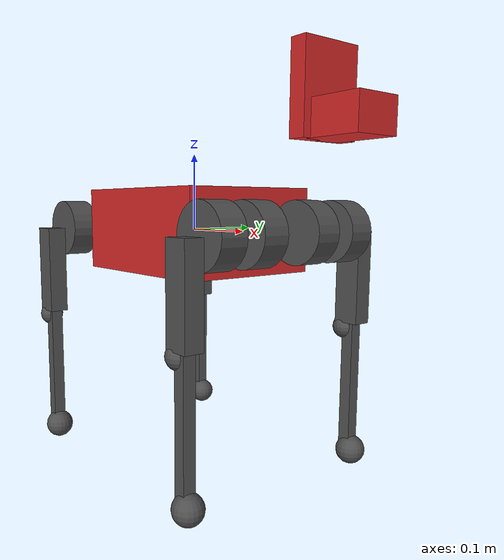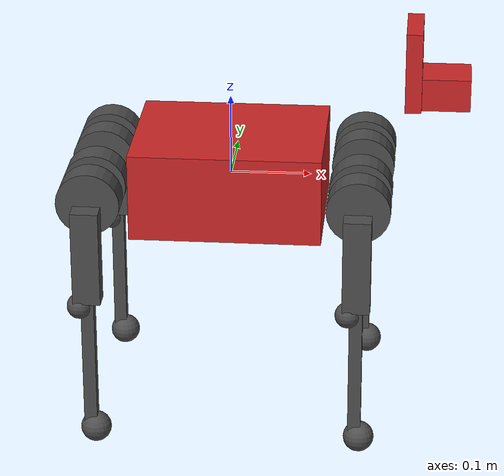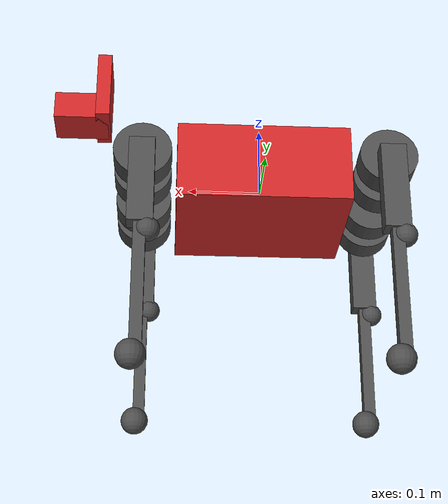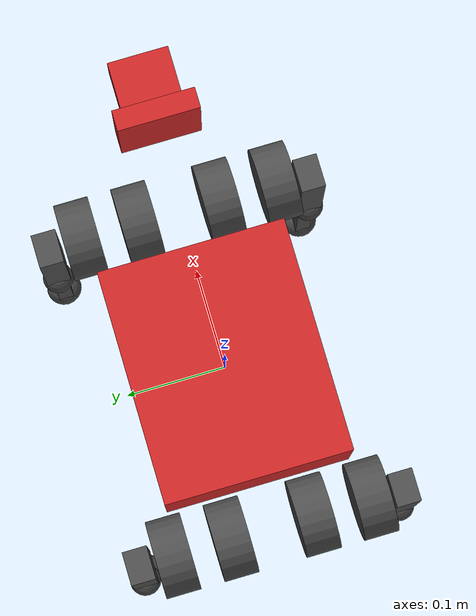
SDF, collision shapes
<sdf version='1.7'>
  <model name='actors'>
    <link name='base_link'>
      <inertial>
        <pose>0.027302 -0.000246 0.014309 0 -0 0</pose>
        <mass>4.031</mass>
        <inertia>
          <ixx>0.0186016</ixx>
          <ixy>-0.000172896</ixy>
          <ixz>-0.0102002</ixz>
          <iyy>0.0518014</iyy>
          <iyz>-2.76742e-05</iyz>
          <izz>0.0484003</izz>
        </inertia>
      </inertial>
      <collision name='base_link_fixed_joint_lump__body_collision'>
        <pose>0 0 0 0 -0 0</pose>
        <geometry>
          <box>
            <size>0.236 0.19 0.109</size>
          </box>
        </geometry>
        <surface>
          <contact>
            <ode>
              <kp>50000</kp>
              <kd>5000</kd>
            </ode>
          </contact>
          <friction>
            <ode>
              <mu>0.2</mu>
              <mu2>0.2</mu2>
            </ode>
          </friction>
        </surface>
      </collision>
      <collision name='base_link_fixed_joint_lump__head_collision_1'>
        <pose>0.256 0 0.12 0 -0 0</pose>
        <geometry>
          <box>
            <size>0.076 0.06 0.04</size>
          </box>
        </geometry>
      </collision>
      <collision name='base_link_fixed_joint_lump__head_collision_2'>
        <pose>0.225 0 0.15 0 -0 0</pose>
        <geometry>
          <box>
            <size>0.02 0.08 0.1</size>
          </box>
        </geometry>
      </collision>
      <collision name='base_link_fixed_joint_lump__imu_link_collision_3'>
        <pose>0.0334 -0.017277 0.051047 0 -0 0</pose>
        <geometry>
          <box>
            <size>0.001 0.001 0.001</size>
          </box>
        </geometry>
        <surface>
          <contact>
            <ode/>
          </contact>
          <friction>
            <ode>
              <mu>0.2</mu>
              <mu2>0.2</mu2>
            </ode>
          </friction>
        </surface>
      </collision>
      <visual name='base_link_visual'>
        <pose>0 0 0 0 -0 0</pose>
        <geometry>
          <box>
            <size>0.001 0.001 0.001</size>
          </box>
        </geometry>
      </visual>
      <visual name='base_link_fixed_joint_lump__body_visual_1'>
        <pose>0 0 0 0 -0 0</pose>
        <geometry>
          <mesh>
            <scale>1 1 1</scale>
            <uri>model://body.dae</uri>
          </mesh>
        </geometry>
      </visual>
      <visual name='base_link_fixed_joint_lump__imu_link_visual_2'>
        <pose>0.0334 -0.017277 0.051047 0 -0 0</pose>
        <geometry>
          <box>
            <size>0.001 0.001 0.001</size>
          </box>
        </geometry>
        <material>
          <script>
            <name>Gazebo/Red</name>
            <uri>file://media/materials/scripts/gazebo.material</uri>
          </script>
        </material>
      </visual>
      <sensor name='imu_sensor' type='imu'>
        <plugin name='imu_plugin' filename='libgazebo_ros_imu_sensor.so'>
          <ros>
            <namespace>/</namespace>
            <remapping>~/out:=imu</remapping>
          </ros>
          <initial_orientation_as_reference>0</initial_orientation_as_reference>
        </plugin>
        <always_on>1</always_on>
        <update_rate>100</update_rate>
        <visualize>1</visualize>
        <imu>
          <angular_velocity>
            <x>
              <noise type='gaussian'>
                <mean>0</mean>
                <stddev>0.0002</stddev>
                <bias_mean>7.5e-06</bias_mean>
                <bias_stddev>8e-07</bias_stddev>
              </noise>
            </x>
            <y>
              <noise type='gaussian'>
                <mean>0</mean>
                <stddev>0.0002</stddev>
                <bias_mean>7.5e-06</bias_mean>
                <bias_stddev>8e-07</bias_stddev>
              </noise>
            </y>
            <z>
              <noise type='gaussian'>
                <mean>0</mean>
                <stddev>0.0002</stddev>
                <bias_mean>7.5e-06</bias_mean>
                <bias_stddev>8e-07</bias_stddev>
              </noise>
            </z>
          </angular_velocity>
          <linear_acceleration>
            <x>
              <noise type='gaussian'>
                <mean>0</mean>
                <stddev>0.017</stddev>
                <bias_mean>0.1</bias_mean>
                <bias_stddev>0.001</bias_stddev>
              </noise>
            </x>
            <y>
              <noise type='gaussian'>
                <mean>0</mean>
                <stddev>0.017</stddev>
                <bias_mean>0.1</bias_mean>
                <bias_stddev>0.001</bias_stddev>
              </noise>
            </y>
            <z>
              <noise type='gaussian'>
                <mean>0</mean>
                <stddev>0.017</stddev>
                <bias_mean>0.1</bias_mean>
                <bias_stddev>0.001</bias_stddev>
              </noise>
            </z>
          </linear_acceleration>
        </imu>
        <pose>0.0334 -0.017277 0.051047 0 -0 0</pose>
      </sensor>
    </link>
    <joint name='FL_abad_joint' type='revolute'>
      <pose relative_to='base_link'>0.164 0.042 0 0 -0 0</pose>
      <parent>base_link</parent>
      <child>FL_abad</child>
      <axis>
        <xyz>1 0 0</xyz>
        <limit>
          <lower>-0.680678</lower>
          <upper>0.680678</upper>
          <effort>12.0001</effort>
          <velocity>30.9971</velocity>
        </limit>
        <dynamics>
          <damping>0.01</damping>
          <friction>0.1</friction>
          <spring_reference>0</spring_reference>
          <spring_stiffness>0</spring_stiffness>
        </dynamics>
      </axis>
    </joint>
    <link name='FL_abad'>
      <pose relative_to='FL_abad_joint'>0 0 0 0 -0 0</pose>
      <inertial>
        <pose>-0.012246 0.012929 -0.000264 0 -0 0</pose>
        <mass>0.4107</mass>
        <inertia>
          <ixx>0.000226301</ixx>
          <ixy>-7.12124e-05</ixy>
          <ixz>5.57934e-07</ixz>
          <iyy>0.000501569</iyy>
          <iyz>2.17432e-06</iyz>
          <izz>0.000447061</izz>
        </inertia>
      </inertial>
      <collision name='FL_abad_collision'>
        <pose>0 0 0 1.5708 -0 0</pose>
        <geometry>
          <cylinder>
            <length>0.035</length>
            <radius>0.039</radius>
          </cylinder>
        </geometry>
        <surface>
          <contact>
            <ode/>
          </contact>
          <friction>
            <ode>
              <mu>0.2</mu>
              <mu2>0.2</mu2>
            </ode>
          </friction>
        </surface>
      </collision>
      <collision name='FL_abad_fixed_joint_lump__FL_hip_shoulder_collision_1'>
        <pose>0 0.059 0 1.5708 -0 0</pose>
        <geometry>
          <cylinder>
            <length>0.035</length>
            <radius>0.039</radius>
          </cylinder>
        </geometry>
      </collision>
      <visual name='FL_abad_visual'>
        <pose>0 0 0 0 -0 0</pose>
        <geometry>
          <mesh>
            <scale>1 1 1</scale>
            <uri>model://abad.dae</uri>
          </mesh>
        </geometry>
        <material>
          <script>
            <name>Gazebo/DarkGrey</name>
            <uri>file://media/materials/scripts/gazebo.material</uri>
          </script>
        </material>
      </visual>
    </link>
    <joint name='FL_hip_joint' type='revolute'>
      <pose relative_to='FL_abad'>0 0.094 0 0 -0 0</pose>
      <parent>FL_abad</parent>
      <child>FL_hip</child>
      <axis>
        <xyz>0 1 0</xyz>
        <limit>
          <lower>-1.32645</lower>
          <upper>2.79253</upper>
          <effort>12.0001</effort>
          <velocity>30.9971</velocity>
        </limit>
        <dynamics>
          <damping>0.01</damping>
          <friction>0.1</friction>
          <spring_reference>0</spring_reference>
          <spring_stiffness>0</spring_stiffness>
        </dynamics>
      </axis>
    </joint>
    <link name='FL_hip'>
      <pose relative_to='FL_hip_joint'>0 0 0 0 -0 0</pose>
      <inertial>
        <pose>-0.001716 -0.027638 -0.014896 0 -0 0</pose>
        <mass>0.5954</mass>
        <inertia>
          <ixx>0.00124548</ixx>
          <ixy>2.88782e-05</ixy>
          <ixz>-4.2081e-05</ixz>
          <iyy>0.00111009</iyy>
          <iyz>0.000256094</iyz>
          <izz>0.000551811</izz>
        </inertia>
      </inertial>
      <collision name='FL_hip_collision'>
        <pose>0 0 -0.06 0 1.5708 0</pose>
        <geometry>
          <box>
            <size>0.12 0.025 0.034</size>
          </box>
        </geometry>
        <surface>
          <contact>
            <ode>
              <kp>50000</kp>
              <kd>5000</kd>
            </ode>
          </contact>
          <friction>
            <ode>
              <mu>0.2</mu>
              <mu2>0.2</mu2>
            </ode>
          </friction>
        </surface>
      </collision>
      <visual name='FL_hip_visual'>
        <pose>0 0 0 0 -0 0</pose>
        <geometry>
          <mesh>
            <scale>1 1 1</scale>
            <uri>model://hip.dae</uri>
          </mesh>
        </geometry>
        <material>
          <script>
            <name>Gazebo/DarkGrey</name>
            <uri>file://media/materials/scripts/gazebo.material</uri>
          </script>
        </material>
      </visual>
      <self_collide>1</self_collide>
    </link>
    <joint name='FL_knee_joint' type='revolute'>
      <pose relative_to='FL_hip'>0 0 -0.12 0 -0 0</pose>
      <parent>FL_hip</parent>
      <child>FL_knee</child>
      <axis>
        <xyz>0 1 0</xyz>
        <limit>
          <lower>-2.53073</lower>
          <upper>-0.523599</upper>
          <effort>12.0001</effort>
          <velocity>30.9971</velocity>
        </limit>
        <dynamics>
          <damping>0.01</damping>
          <friction>0.1</friction>
          <spring_reference>0</spring_reference>
          <spring_stiffness>0</spring_stiffness>
        </dynamics>
      </axis>
    </joint>
    <link name='FL_knee'>
      <pose relative_to='FL_knee_joint'>0 0 0 0 -0 0</pose>
      <inertial>
        <pose>0.0006 -4.7e-05 -0.0893 0 -0 0</pose>
        <mass>0.116</mass>
        <inertia>
          <ixx>0.000668</ixx>
          <ixy>3e-09</ixy>
          <ixz>2.37e-05</ixz>
          <iyy>0.000674</iyy>
          <iyz>6.03e-07</iyz>
          <izz>1.54e-05</izz>
        </inertia>
      </inertial>
      <collision name='FL_knee_collision'>
        <pose>0 0 -0.091705 3.14159 0 3.14159</pose>
        <geometry>
          <box>
            <size>0.016 0.016 0.18341</size>
          </box>
        </geometry>
        <surface>
          <contact>
            <ode/>
          </contact>
          <friction>
            <ode>
              <mu>0.7</mu>
              <mu2>0.7</mu2>
            </ode>
          </friction>
        </surface>
      </collision>
      <collision name='FL_knee_rubber_collision_1'>
        <pose>-0.01 0 -0.007 3.14159 0 3.14159</pose>
        <geometry>
          <sphere>
            <radius>0.016</radius>
          </sphere>
        </geometry>
        <surface>
          <contact>
            <ode/>
          </contact>
          <friction>
            <ode>
              <mu>0.7</mu>
              <mu2>0.7</mu2>
            </ode>
          </friction>
        </surface>
      </collision>
      <collision name='FL_knee_fixed_joint_lump__FL_foot_collision_2'>
        <pose>0.0055 0 -0.17391 0 -0 0</pose>
        <geometry>
          <sphere>
            <radius>0.019</radius>
          </sphere>
        </geometry>
        <surface>
          <contact>
            <ode>
              <kp>50000</kp>
              <kd>5000</kd>
            </ode>
          </contact>
          <friction>
            <ode>
              <mu>0.7</mu>
              <mu2>0.7</mu2>
            </ode>
          </friction>
        </surface>
      </collision>
      <visual name='FL_knee_visual'>
        <pose>0 0 0 0 -0 0</pose>
        <geometry>
          <mesh>
            <scale>1 1 1</scale>
            <uri>model://knee.dae</uri>
          </mesh>
        </geometry>
      </visual>
      <visual name='FL_knee_fixed_joint_lump__FL_foot_visual_1'>
        <pose>0.0055 0 -0.17391 0 -0 0</pose>
        <geometry>
          <sphere>
            <radius>0.009</radius>
          </sphere>
        </geometry>
        <material>
          <script>
            <name>Gazebo/DarkGrey</name>
            <uri>file://media/materials/scripts/gazebo.material</uri>
          </script>
        </material>
      </visual>
      <self_collide>1</self_collide>
      <self_collide>1</self_collide>
    </link>
    <joint name='FR_abad_joint' type='revolute'>
      <pose relative_to='base_link'>0.164 -0.042 0 0 -0 0</pose>
      <parent>base_link</parent>
      <child>FR_abad</child>
      <axis>
        <xyz>1 0 0</xyz>
        <limit>
          <lower>-0.680678</lower>
          <upper>0.680678</upper>
          <effort>12.0001</effort>
          <velocity>30.9971</velocity>
        </limit>
        <dynamics>
          <damping>0.01</damping>
          <friction>0.1</friction>
          <spring_reference>0</spring_reference>
          <spring_stiffness>0</spring_stiffness>
        </dynamics>
      </axis>
    </joint>
    <link name='FR_abad'>
      <pose relative_to='FR_abad_joint'>0 0 0 0 -0 0</pose>
      <inertial>
        <pose>-0.012246 -0.012929 -0.000264 0 -0 0</pose>
        <mass>0.4107</mass>
        <inertia>
          <ixx>0.000226301</ixx>
          <ixy>7.12124e-05</ixy>
          <ixz>5.57934e-07</ixz>
          <iyy>0.000501569</iyy>
          <iyz>-2.17432e-06</iyz>
          <izz>0.000447061</izz>
        </inertia>
      </inertial>
      <collision name='FR_abad_collision'>
        <pose>0 0 0 1.5708 -0 0</pose>
        <geometry>
          <cylinder>
            <length>0.035</length>
            <radius>0.039</radius>
          </cylinder>
        </geometry>
        <surface>
          <contact>
            <ode/>
          </contact>
          <friction>
            <ode>
              <mu>0.2</mu>
              <mu2>0.2</mu2>
            </ode>
          </friction>
        </surface>
      </collision>
      <collision name='FR_abad_fixed_joint_lump__FR_hip_shoulder_collision_1'>
        <pose>0 -0.059 0 1.5708 -0 0</pose>
        <geometry>
          <cylinder>
            <length>0.035</length>
            <radius>0.039</radius>
          </cylinder>
        </geometry>
      </collision>
      <visual name='FR_abad_visual'>
        <pose>0 0 0 3.14159 -0 0</pose>
        <geometry>
          <mesh>
            <scale>1 1 1</scale>
            <uri>model://abad.dae</uri>
          </mesh>
        </geometry>
        <material>
          <script>
            <name>Gazebo/DarkGrey</name>
            <uri>file://media/materials/scripts/gazebo.material</uri>
          </script>
        </material>
      </visual>
    </link>
    <joint name='FR_hip_joint' type='revolute'>
      <pose relative_to='FR_abad'>0 -0.094 0 0 -0 0</pose>
      <parent>FR_abad</parent>
      <child>FR_hip</child>
      <axis>
        <xyz>0 1 0</xyz>
        <limit>
          <lower>-1.32645</lower>
          <upper>2.79253</upper>
          <effort>12.0001</effort>
          <velocity>30.9971</velocity>
        </limit>
        <dynamics>
          <damping>0.01</damping>
          <friction>0.1</friction>
          <spring_reference>0</spring_reference>
          <spring_stiffness>0</spring_stiffness>
        </dynamics>
      </axis>
    </joint>
    <link name='FR_hip'>
      <pose relative_to='FR_hip_joint'>0 0 0 0 -0 0</pose>
      <inertial>
        <pose>-0.001716 0.027638 -0.014896 0 -0 0</pose>
        <mass>0.5954</mass>
        <inertia>
          <ixx>0.00124548</ixx>
          <ixy>-2.88782e-05</ixy>
          <ixz>-4.2081e-05</ixz>
          <iyy>0.00111009</iyy>
          <iyz>-0.000256094</iyz>
          <izz>0.000551811</izz>
        </inertia>
      </inertial>
      <collision name='FR_hip_collision'>
        <pose>0 0 -0.06 0 1.5708 0</pose>
        <geometry>
          <box>
            <size>0.12 0.025 0.034</size>
          </box>
        </geometry>
        <surface>
          <contact>
            <ode>
              <kp>50000</kp>
              <kd>5000</kd>
            </ode>
          </contact>
          <friction>
            <ode>
              <mu>0.2</mu>
              <mu2>0.2</mu2>
            </ode>
          </friction>
        </surface>
      </collision>
      <visual name='FR_hip_visual'>
        <pose>0 0 0 0 -0 0</pose>
        <geometry>
          <mesh>
            <scale>1 1 1</scale>
            <uri>model://hip_mirror.dae</uri>
          </mesh>
        </geometry>
        <material>
          <script>
            <name>Gazebo/DarkGrey</name>
            <uri>file://media/materials/scripts/gazebo.material</uri>
          </script>
        </material>
      </visual>
      <self_collide>1</self_collide>
    </link>
    <joint name='FR_knee_joint' type='revolute'>
      <pose relative_to='FR_hip'>0 0 -0.12 0 -0 0</pose>
      <parent>FR_hip</parent>
      <child>FR_knee</child>
      <axis>
        <xyz>0 1 0</xyz>
        <limit>
          <lower>-2.53073</lower>
          <upper>-0.523599</upper>
          <effort>12.0001</effort>
          <velocity>30.9971</velocity>
        </limit>
        <dynamics>
          <damping>0.01</damping>
          <friction>0.1</friction>
          <spring_reference>0</spring_reference>
          <spring_stiffness>0</spring_stiffness>
        </dynamics>
      </axis>
    </joint>
    <link name='FR_knee'>
      <pose relative_to='FR_knee_joint'>0 0 0 0 -0 0</pose>
      <inertial>
        <pose>0.0006 -4.7e-05 -0.0893 0 -0 0</pose>
        <mass>0.116</mass>
        <inertia>
          <ixx>0.000668</ixx>
          <ixy>3e-09</ixy>
          <ixz>2.37e-05</ixz>
          <iyy>0.000674</iyy>
          <iyz>6.03e-07</iyz>
          <izz>1.54e-05</izz>
        </inertia>
      </inertial>
      <collision name='FR_knee_collision'>
        <pose>0 0 -0.091705 3.14159 0 3.14159</pose>
        <geometry>
          <box>
            <size>0.016 0.016 0.18341</size>
          </box>
        </geometry>
        <surface>
          <contact>
            <ode/>
          </contact>
          <friction>
            <ode>
              <mu>0.2</mu>
              <mu2>0.2</mu2>
            </ode>
          </friction>
        </surface>
      </collision>
      <collision name='FR_knee_rubber_collision_1'>
        <pose>-0.01 0 -0.007 3.14159 0 3.14159</pose>
        <geometry>
          <sphere>
            <radius>0.016</radius>
          </sphere>
        </geometry>
        <surface>
          <contact>
            <ode/>
          </contact>
          <friction>
            <ode>
              <mu>0.2</mu>
              <mu2>0.2</mu2>
            </ode>
          </friction>
        </surface>
      </collision>
      <collision name='FR_knee_fixed_joint_lump__FR_foot_collision_2'>
        <pose>0.0055 0 -0.17391 0 -0 0</pose>
        <geometry>
          <sphere>
            <radius>0.019</radius>
          </sphere>
        </geometry>
        <surface>
          <contact>
            <ode>
              <kp>50000</kp>
              <kd>5000</kd>
            </ode>
          </contact>
          <friction>
            <ode>
              <mu>0.7</mu>
              <mu2>0.7</mu2>
            </ode>
          </friction>
        </surface>
      </collision>
      <visual name='FR_knee_visual'>
        <pose>0 0 0 0 -0 0</pose>
        <geometry>
          <mesh>
            <scale>1 1 1</scale>
            <uri>model://knee.dae</uri>
          </mesh>
        </geometry>
      </visual>
      <visual name='FR_knee_fixed_joint_lump__FR_foot_visual_1'>
        <pose>0.0055 0 -0.17391 0 -0 0</pose>
        <geometry>
          <sphere>
            <radius>0.009</radius>
          </sphere>
        </geometry>
        <material>
          <script>
            <name>Gazebo/DarkGrey</name>
            <uri>file://media/materials/scripts/gazebo.material</uri>
          </script>
        </material>
      </visual>
      <self_collide>1</self_collide>
      <self_collide>1</self_collide>
    </link>
    <joint name='RL_abad_joint' type='revolute'>
      <pose relative_to='base_link'>-0.164 0.042 0 0 -0 0</pose>
      <parent>base_link</parent>
      <child>RL_abad</child>
      <axis>
        <xyz>1 0 0</xyz>
        <limit>
          <lower>-0.680678</lower>
          <upper>0.680678</upper>
          <effort>12.0001</effort>
          <velocity>30.9971</velocity>
        </limit>
        <dynamics>
          <damping>0.01</damping>
          <friction>0.1</friction>
          <spring_reference>0</spring_reference>
          <spring_stiffness>0</spring_stiffness>
        </dynamics>
      </axis>
    </joint>
    <link name='RL_abad'>
      <pose relative_to='RL_abad_joint'>0 0 0 0 -0 0</pose>
      <inertial>
        <pose>0.012246 0.012929 -0.000264 0 -0 0</pose>
        <mass>0.4107</mass>
        <inertia>
          <ixx>0.000226301</ixx>
          <ixy>7.12124e-05</ixy>
          <ixz>-5.57934e-07</ixz>
          <iyy>0.000501569</iyy>
          <iyz>2.17432e-06</iyz>
          <izz>0.000447061</izz>
        </inertia>
      </inertial>
      <collision name='RL_abad_collision'>
        <pose>0 0 0 1.5708 -0 0</pose>
        <geometry>
          <cylinder>
            <length>0.035</length>
            <radius>0.039</radius>
          </cylinder>
        </geometry>
        <surface>
          <contact>
            <ode/>
          </contact>
          <friction>
            <ode>
              <mu>0.2</mu>
              <mu2>0.2</mu2>
            </ode>
          </friction>
        </surface>
      </collision>
      <collision name='RL_abad_fixed_joint_lump__RL_hip_shoulder_collision_1'>
        <pose>0 0.059 0 1.5708 -0 0</pose>
        <geometry>
          <cylinder>
            <length>0.035</length>
            <radius>0.039</radius>
          </cylinder>
        </geometry>
      </collision>
      <visual name='RL_abad_visual'>
        <pose>0 0 0 3.14159 0 3.14159</pose>
        <geometry>
          <mesh>
            <scale>1 1 1</scale>
            <uri>model://abad.dae</uri>
          </mesh>
        </geometry>
        <material>
          <script>
            <name>Gazebo/DarkGrey</name>
            <uri>file://media/materials/scripts/gazebo.material</uri>
          </script>
        </material>
      </visual>
    </link>
    <joint name='RL_hip_joint' type='revolute'>
      <pose relative_to='RL_abad'>0 0.094 0 0 -0 0</pose>
      <parent>RL_abad</parent>
      <child>RL_hip</child>
      <axis>
        <xyz>0 1 0</xyz>
        <limit>
          <lower>-0.977384</lower>
          <upper>3.14159</upper>
          <effort>12.0001</effort>
          <velocity>30.9971</velocity>
        </limit>
        <dynamics>
          <damping>0.01</damping>
          <friction>0.1</friction>
          <spring_reference>0</spring_reference>
          <spring_stiffness>0</spring_stiffness>
        </dynamics>
      </axis>
    </joint>
    <link name='RL_hip'>
      <pose relative_to='RL_hip_joint'>0 0 0 0 -0 0</pose>
      <inertial>
        <pose>-0.001716 -0.027638 -0.014896 0 -0 0</pose>
        <mass>0.5954</mass>
        <inertia>
          <ixx>0.00124548</ixx>
          <ixy>2.88782e-05</ixy>
          <ixz>-4.2081e-05</ixz>
          <iyy>0.00111009</iyy>
          <iyz>0.000256094</iyz>
          <izz>0.000551811</izz>
        </inertia>
      </inertial>
      <collision name='RL_hip_collision'>
        <pose>0 0 -0.06 0 1.5708 0</pose>
        <geometry>
          <box>
            <size>0.12 0.025 0.034</size>
          </box>
        </geometry>
        <surface>
          <contact>
            <ode>
              <kp>50000</kp>
              <kd>5000</kd>
            </ode>
          </contact>
          <friction>
            <ode>
              <mu>0.2</mu>
              <mu2>0.2</mu2>
            </ode>
          </friction>
        </surface>
      </collision>
      <visual name='RL_hip_visual'>
        <pose>0 0 0 0 -0 0</pose>
        <geometry>
          <mesh>
            <scale>1 1 1</scale>
            <uri>model://hip.dae</uri>
          </mesh>
        </geometry>
        <material>
          <script>
            <name>Gazebo/DarkGrey</name>
            <uri>file://media/materials/scripts/gazebo.material</uri>
          </script>
        </material>
      </visual>
      <self_collide>1</self_collide>
    </link>
    <joint name='RL_knee_joint' type='revolute'>
      <pose relative_to='RL_hip'>0 0 -0.12 0 -0 0</pose>
      <parent>RL_hip</parent>
      <child>RL_knee</child>
      <axis>
        <xyz>0 1 0</xyz>
        <limit>
          <lower>-2.53073</lower>
          <upper>-0.523599</upper>
          <effort>12.0001</effort>
          <velocity>30.9971</velocity>
        </limit>
        <dynamics>
          <damping>0.01</damping>
          <friction>0.1</friction>
          <spring_reference>0</spring_reference>
          <spring_stiffness>0</spring_stiffness>
        </dynamics>
      </axis>
    </joint>
    <link name='RL_knee'>
      <pose relative_to='RL_knee_joint'>0 0 0 0 -0 0</pose>
      <inertial>
        <pose>0.0006 -4.7e-05 -0.0893 0 -0 0</pose>
        <mass>0.116</mass>
        <inertia>
          <ixx>0.000668</ixx>
          <ixy>3e-09</ixy>
          <ixz>2.37e-05</ixz>
          <iyy>0.000674</iyy>
          <iyz>6.03e-07</iyz>
          <izz>1.54e-05</izz>
        </inertia>
      </inertial>
      <collision name='RL_knee_collision'>
        <pose>0 0 -0.091705 3.14159 0 3.14159</pose>
        <geometry>
          <box>
            <size>0.016 0.016 0.18341</size>
          </box>
        </geometry>
        <surface>
          <contact>
            <ode>
              <kp>5e+09</kp>
              <kd>50000</kd>
            </ode>
          </contact>
          <friction>
            <ode>
              <mu>0.7</mu>
              <mu2>0.7</mu2>
            </ode>
          </friction>
        </surface>
      </collision>
      <collision name='RL_knee_rubber_collision_1'>
        <pose>-0.01 0 -0.007 3.14159 0 3.14159</pose>
        <geometry>
          <sphere>
            <radius>0.016</radius>
          </sphere>
        </geometry>
        <surface>
          <contact>
            <ode>
              <kp>5e+09</kp>
              <kd>50000</kd>
            </ode>
          </contact>
          <friction>
            <ode>
              <mu>0.7</mu>
              <mu2>0.7</mu2>
            </ode>
          </friction>
        </surface>
      </collision>
      <collision name='RL_knee_fixed_joint_lump__RL_foot_collision_2'>
        <pose>0.0055 0 -0.17391 0 -0 0</pose>
        <geometry>
          <sphere>
            <radius>0.019</radius>
          </sphere>
        </geometry>
        <surface>
          <contact>
            <ode>
              <kp>50000</kp>
              <kd>5000</kd>
            </ode>
          </contact>
          <friction>
            <ode>
              <mu>0.7</mu>
              <mu2>0.7</mu2>
            </ode>
          </friction>
        </surface>
      </collision>
      <visual name='RL_knee_visual'>
        <pose>0 0 0 0 -0 0</pose>
        <geometry>
          <mesh>
            <scale>1 1 1</scale>
            <uri>model://knee.dae</uri>
          </mesh>
        </geometry>
      </visual>
      <visual name='RL_knee_fixed_joint_lump__RL_foot_visual_1'>
        <pose>0.0055 0 -0.17391 0 -0 0</pose>
        <geometry>
          <sphere>
            <radius>0.009</radius>
          </sphere>
        </geometry>
        <material>
          <script>
            <name>Gazebo/DarkGrey</name>
            <uri>file://media/materials/scripts/gazebo.material</uri>
          </script>
        </material>
      </visual>
      <self_collide>1</self_collide>
      <self_collide>1</self_collide>
    </link>
    <joint name='RR_abad_joint' type='revolute'>
      <pose relative_to='base_link'>-0.164 -0.042 0 0 -0 0</pose>
      <parent>base_link</parent>
      <child>RR_abad</child>
      <axis>
        <xyz>1 0 0</xyz>
        <limit>
          <lower>-0.680678</lower>
          <upper>0.680678</upper>
          <effort>12.0001</effort>
          <velocity>30.9971</velocity>
        </limit>
        <dynamics>
          <damping>0.01</damping>
          <friction>0.1</friction>
          <spring_reference>0</spring_reference>
          <spring_stiffness>0</spring_stiffness>
        </dynamics>
      </axis>
    </joint>
    <link name='RR_abad'>
      <pose relative_to='RR_abad_joint'>0 0 0 0 -0 0</pose>
      <inertial>
        <pose>0.012246 -0.012929 -0.000264 0 -0 0</pose>
        <mass>0.4107</mass>
        <inertia>
          <ixx>0.000226301</ixx>
          <ixy>-7.12124e-05</ixy>
          <ixz>-5.57934e-07</ixz>
          <iyy>0.000501569</iyy>
          <iyz>-2.17432e-06</iyz>
          <izz>0.000447061</izz>
        </inertia>
      </inertial>
      <collision name='RR_abad_collision'>
        <pose>0 0 0 1.5708 -0 0</pose>
        <geometry>
          <cylinder>
            <length>0.035</length>
            <radius>0.039</radius>
          </cylinder>
        </geometry>
        <surface>
          <contact>
            <ode/>
          </contact>
          <friction>
            <ode>
              <mu>0.2</mu>
              <mu2>0.2</mu2>
            </ode>
          </friction>
        </surface>
      </collision>
      <collision name='RR_abad_fixed_joint_lump__RR_hip_shoulder_collision_1'>
        <pose>0 -0.059 0 1.5708 -0 0</pose>
        <geometry>
          <cylinder>
            <length>0.035</length>
            <radius>0.039</radius>
          </cylinder>
        </geometry>
      </collision>
      <visual name='RR_abad_visual'>
        <pose>0 0 0 -0 0 3.14159</pose>
        <geometry>
          <mesh>
            <scale>1 1 1</scale>
            <uri>model://abad.dae</uri>
          </mesh>
        </geometry>
        <material>
          <script>
            <name>Gazebo/DarkGrey</name>
            <uri>file://media/materials/scripts/gazebo.material</uri>
          </script>
        </material>
      </visual>
    </link>
    <joint name='RR_hip_joint' type='revolute'>
      <pose relative_to='RR_abad'>0 -0.094 0 0 -0 0</pose>
      <parent>RR_abad</parent>
      <child>RR_hip</child>
      <axis>
        <xyz>0 1 0</xyz>
        <limit>
          <lower>-0.977384</lower>
          <upper>3.14159</upper>
          <effort>12.0001</effort>
          <velocity>30.9971</velocity>
        </limit>
        <dynamics>
          <damping>0.01</damping>
          <friction>0.1</friction>
          <spring_reference>0</spring_reference>
          <spring_stiffness>0</spring_stiffness>
        </dynamics>
      </axis>
    </joint>
    <link name='RR_hip'>
      <pose relative_to='RR_hip_joint'>0 0 0 0 -0 0</pose>
      <inertial>
        <pose>-0.001716 0.027638 -0.014896 0 -0 0</pose>
        <mass>0.5954</mass>
        <inertia>
          <ixx>0.00124548</ixx>
          <ixy>-2.88782e-05</ixy>
          <ixz>-4.2081e-05</ixz>
          <iyy>0.00111009</iyy>
          <iyz>-0.000256094</iyz>
          <izz>0.000551811</izz>
        </inertia>
      </inertial>
      <collision name='RR_hip_collision'>
        <pose>0 0 -0.06 0 1.5708 0</pose>
        <geometry>
          <box>
            <size>0.12 0.025 0.034</size>
          </box>
        </geometry>
        <surface>
          <contact>
            <ode>
              <kp>50000</kp>
              <kd>5000</kd>
            </ode>
          </contact>
          <friction>
            <ode>
              <mu>0.2</mu>
              <mu2>0.2</mu2>
            </ode>
          </friction>
        </surface>
      </collision>
      <visual name='RR_hip_visual'>
        <pose>0 0 0 0 -0 0</pose>
        <geometry>
          <mesh>
            <scale>1 1 1</scale>
            <uri>model://hip_mirror.dae</uri>
          </mesh>
        </geometry>
        <material>
          <script>
            <name>Gazebo/DarkGrey</name>
            <uri>file://media/materials/scripts/gazebo.material</uri>
          </script>
        </material>
      </visual>
      <self_collide>1</self_collide>
    </link>
    <joint name='RR_knee_joint' type='revolute'>
      <pose relative_to='RR_hip'>0 0 -0.12 0 -0 0</pose>
      <parent>RR_hip</parent>
      <child>RR_knee</child>
      <axis>
        <xyz>0 1 0</xyz>
        <limit>
          <lower>-2.53073</lower>
          <upper>-0.523599</upper>
          <effort>12.0001</effort>
          <velocity>30.9971</velocity>
        </limit>
        <dynamics>
          <damping>0.01</damping>
          <friction>0.1</friction>
          <spring_reference>0</spring_reference>
          <spring_stiffness>0</spring_stiffness>
        </dynamics>
      </axis>
    </joint>
    <link name='RR_knee'>
      <pose relative_to='RR_knee_joint'>0 0 0 0 -0 0</pose>
      <inertial>
        <pose>0.0006 -4.7e-05 -0.0893 0 -0 0</pose>
        <mass>0.116</mass>
        <inertia>
          <ixx>0.000668</ixx>
          <ixy>3e-09</ixy>
          <ixz>2.37e-05</ixz>
          <iyy>0.000674</iyy>
          <iyz>6.03e-07</iyz>
          <izz>1.54e-05</izz>
        </inertia>
      </inertial>
      <collision name='RR_knee_collision'>
        <pose>0 0 -0.091705 3.14159 0 3.14159</pose>
        <geometry>
          <box>
            <size>0.016 0.016 0.18341</size>
          </box>
        </geometry>
        <surface>
          <contact>
            <ode>
              <kp>5e+09</kp>
              <kd>50000</kd>
            </ode>
          </contact>
          <friction>
            <ode>
              <mu>0.7</mu>
              <mu2>0.7</mu2>
            </ode>
          </friction>
        </surface>
      </collision>
      <collision name='RR_knee_rubber_collision_1'>
        <pose>-0.01 0 -0.007 3.14159 0 3.14159</pose>
        <geometry>
          <sphere>
            <radius>0.016</radius>
          </sphere>
        </geometry>
        <surface>
          <contact>
            <ode>
              <kp>5e+09</kp>
              <kd>50000</kd>
            </ode>
          </contact>
          <friction>
            <ode>
              <mu>0.7</mu>
              <mu2>0.7</mu2>
            </ode>
          </friction>
        </surface>
      </collision>
      <collision name='RR_knee_fixed_joint_lump__RR_foot_collision_2'>
        <pose>0.0055 0 -0.17391 0 -0 0</pose>
        <geometry>
          <sphere>
            <radius>0.019</radius>
          </sphere>
        </geometry>
        <surface>
          <contact>
            <ode>
              <kp>50000</kp>
              <kd>5000</kd>
            </ode>
          </contact>
          <friction>
            <ode>
              <mu>0.7</mu>
              <mu2>0.7</mu2>
            </ode>
          </friction>
        </surface>
      </collision>
      <visual name='RR_knee_visual'>
        <pose>0 0 0 0 -0 0</pose>
        <geometry>
          <mesh>
            <scale>1 1 1</scale>
            <uri>model://knee.dae</uri>
          </mesh>
        </geometry>
      </visual>
      <visual name='RR_knee_fixed_joint_lump__RR_foot_visual_1'>
        <pose>0.0055 0 -0.17391 0 -0 0</pose>
        <geometry>
          <sphere>
            <radius>0.009</radius>
          </sphere>
        </geometry>
        <material>
          <script>
            <name>Gazebo/DarkGrey</name>
            <uri>file://media/materials/scripts/gazebo.material</uri>
          </script>
        </material>
      </visual>
      <self_collide>1</self_collide>
      <self_collide>1</self_collide>
    </link>
    <static>0</static>
  </model>
</sdf>
